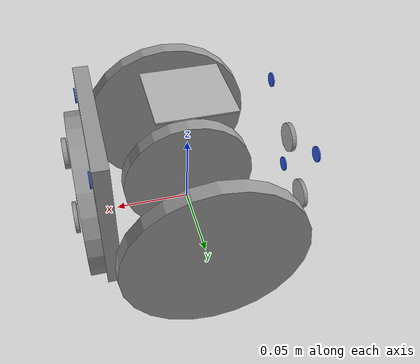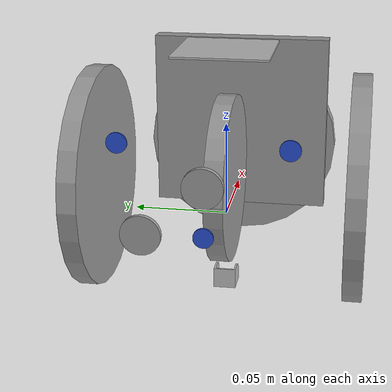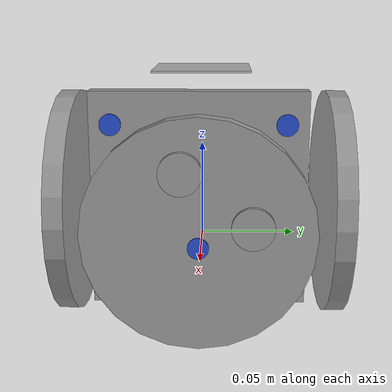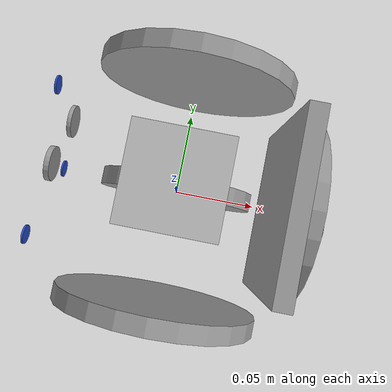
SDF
<sdf version="1.6">
 <model name="ditto5">
  <link name="body">
   <inertial>
    <mass>5</mass>
    <inertia>
     <ixx>0.166667</ixx>
     <ixy>0</ixy>
     <ixz>0</ixz>
     <iyy>0.166667</iyy>
     <iyz>0</iyz>
     <izz>0.166667</izz>
    </inertia>
   </inertial>
   <pose>0 -0 -0.036667 0 -0 -1.5707</pose>
   <visual name="visual">
    <geometry><mesh><uri>model://meshes/bodyCorrected.obj</uri><scale>0.001 0.001 0.001</scale></mesh></geometry>
    <material><shader type="pixel"/><emissive>0 0 0 1</emissive></material>
   </visual>
   <collision name="collision">
    <geometry><mesh><uri>model://meshes/bodyCorrected.obj</uri><scale>0.001 0.001 0.001</scale></mesh></geometry>
    <surface>
     <friction>
      <ode><mu>1</mu><mu2>1</mu2><fdir1>0 0 0</fdir1><slip1>0</slip1><slip2>0</slip2></ode>
      <torsional>
       <coefficient>1</coefficient>
       <patch_radius>0</patch_radius>
       <surface_radius>0</surface_radius>
       <use_patch_radius>1</use_patch_radius>
       <ode><slip>0</slip></ode>
      </torsional>
     </friction>
     <bounce><restitution_coefficient>0</restitution_coefficient><threshold>1e+06</threshold></bounce>
     <contact>
      <collide_without_contact>0</collide_without_contact>
      <collide_without_contact_bitmask>1</collide_without_contact_bitmask>
      <collide_bitmask>1</collide_bitmask>
      <ode>
       <soft_cfm>0</soft_cfm>
       <soft_erp>0.2</soft_erp>
       <kp>1e+13</kp>
       <kd>1</kd>
       <max_vel>0.01</max_vel>
       <min_depth>0</min_depth>
      </ode>
      <bullet>
       <split_impulse>1</split_impulse>
       <split_impulse_penetration_threshold>-0.01</split_impulse_penetration_threshold>
       <soft_cfm>0</soft_cfm>
       <soft_erp>0.2</soft_erp>
       <kp>1e+13</kp>
       <kd>1</kd>
      </bullet>
     </contact>
    </surface>
   </collision>
  </link>
  <link name="body_ir_sensor">
   <inertial>
    <mass>1e-07</mass>
    <inertia><ixx>0</ixx><ixy>0</ixy><ixz>0</ixz><iyy>0</iyy><iyz>0</iyz><izz>0</izz></inertia>
   </inertial>
   <pose>-0.071 0 0.015 1.57068 -2e-06 -1.5707</pose>
   <sensor name="TeraRanger" type="ray">
    <pose>0 0 0 0 -1.5707 0</pose>
    <visualize>0</visualize>
    <update_rate>5</update_rate>
    <ray>
     <scan>
      <horizontal>
       <samples>1</samples>
       <resolution>1</resolution>
       <min_angle>-0.01</min_angle>
       <max_angle>0.01</max_angle>
      </horizontal>
      <vertical>
       <samples>1</samples>
       <resolution>1</resolution>
       <min_angle>-0.01</min_angle>
       <max_angle>0.01</max_angle>
      </vertical>
     </scan>
     <range><min>0.01</min><max>2</max><resolution>0.01</resolution></range>
    </ray>
    <plugin name="gazebo_ros_range" filename="libgazebo_ros_range.so">
     <gaussianNoise>0.005</gaussianNoise>
     <alwaysOn>1</alwaysOn>
     <updateRate>5</updateRate>
     <topicName>ditto5/body_ir</topicName>
     <frameName>body_ir_sensor</frameName>
     <fov>0.5</fov>
     <radiation>ultrasound</radiation>
     <robotNamespace>/</robotNamespace>
    </plugin>
   </sensor>
   <visual name="visual">
    <geometry><cylinder><radius>0.005</radius><length>0.001</length></cylinder></geometry>
    <material>
     <lighting>1</lighting>
     <script><uri>file://media/materials/scripts/gazebo.material</uri><name>Gazebo/Blue</name></script>
     <shader type="pixel"><normal_map>__default__</normal_map></shader>
     <ambient>0.3 0.3 0.3 1</ambient>
     <diffuse>0.7 0.7 0.7 1</diffuse>
     <specular>0.01 0.01 0.01 1</specular>
     <emissive>0 0 0 1</emissive>
    </material>
   </visual>
   <collision name="box_collision">
    <geometry><cylinder><radius>0.005</radius><length>0.001</length></cylinder></geometry>
    <surface>
     <friction>
      <ode><mu>1</mu><mu2>1</mu2><fdir1>0 0 0</fdir1><slip1>0</slip1><slip2>0</slip2></ode>
      <torsional>
       <coefficient>1</coefficient>
       <patch_radius>0</patch_radius>
       <surface_radius>0</surface_radius>
       <use_patch_radius>1</use_patch_radius>
       <ode><slip>0</slip></ode>
      </torsional>
     </friction>
     <bounce><restitution_coefficient>0</restitution_coefficient><threshold>1e+06</threshold></bounce>
     <contact>
      <collide_without_contact>0</collide_without_contact>
      <collide_without_contact_bitmask>1</collide_without_contact_bitmask>
      <collide_bitmask>1</collide_bitmask>
      <ode>
       <soft_cfm>0</soft_cfm>
       <soft_erp>0.2</soft_erp>
       <kp>1e+13</kp>
       <kd>1</kd>
       <max_vel>0.01</max_vel>
       <min_depth>0</min_depth>
      </ode>
      <bullet>
       <split_impulse>1</split_impulse>
       <split_impulse_penetration_threshold>-0.01</split_impulse_penetration_threshold>
       <soft_cfm>0</soft_cfm>
       <soft_erp>0.2</soft_erp>
       <kp>1e+13</kp>
       <kd>1</kd>
      </bullet>
     </contact>
    </surface>
   </collision>
  </link>
  <link name="body_magnet_north">
   <inertial>
    <mass>1e-07</mass>
    <inertia><ixx>0</ixx><ixy>0</ixy><ixz>0</ixz><iyy>0</iyy><iyz>0</iyz><izz>0</izz></inertia>
   </inertial>
   <pose>-0.0715 0.03 0.015 1.5707 -3e-05 -1.5707</pose>
   <sensor name="my_plugin_2" type="contact">
    <plugin name="ContactPlugin_2" filename="libcontact.so">
     <robotNamespace>/</robotNamespace>
     <magnetic_face>body_magnet_south</magnetic_face>
    </plugin>
    <contact><collision>box_collision</collision><topic>__default_topic__</topic></contact>
    <update_rate>5</update_rate>
   </sensor>
   <visual name="visual">
    <geometry><cylinder><radius>0.01</radius><length>0.0025</length></cylinder></geometry>
    <material>
     <lighting>1</lighting>
     <script><uri>file://media/materials/scripts/gazebo.material</uri><name>Gazebo/Grey</name></script>
     <shader type="pixel"><normal_map>__default__</normal_map></shader>
     <ambient>0.3 0.3 0.3 1</ambient>
     <diffuse>0.7 0.7 0.7 1</diffuse>
     <specular>0.01 0.01 0.01 1</specular>
     <emissive>0 0 0 1</emissive>
    </material>
   </visual>
   <collision name="box_collision">
    <geometry><cylinder><radius>0.01</radius><length>0.0025</length></cylinder></geometry>
    <surface>
     <friction>
      <ode><mu>1</mu><mu2>1</mu2><fdir1>0 0 0</fdir1><slip1>0</slip1><slip2>0</slip2></ode>
      <torsional>
       <coefficient>1</coefficient>
       <patch_radius>0</patch_radius>
       <surface_radius>0</surface_radius>
       <use_patch_radius>1</use_patch_radius>
       <ode><slip>0</slip></ode>
      </torsional>
     </friction>
     <bounce><restitution_coefficient>0</restitution_coefficient><threshold>1e+06</threshold></bounce>
     <contact>
      <collide_without_contact>0</collide_without_contact>
      <collide_without_contact_bitmask>1</collide_without_contact_bitmask>
      <collide_bitmask>1</collide_bitmask>
      <ode>
       <soft_cfm>0</soft_cfm>
       <soft_erp>0.2</soft_erp>
       <kp>1e+13</kp>
       <kd>1</kd>
       <max_vel>0.01</max_vel>
       <min_depth>0</min_depth>
      </ode>
      <bullet>
       <split_impulse>1</split_impulse>
       <split_impulse_penetration_threshold>-0.01</split_impulse_penetration_threshold>
       <soft_cfm>0</soft_cfm>
       <soft_erp>0.2</soft_erp>
       <kp>1e+13</kp>
       <kd>1</kd>
      </bullet>
     </contact>
    </surface>
   </collision>
  </link>
  <link name="body_magnet_south">
   <inertial>
    <mass>1e-07</mass>
    <inertia><ixx>0</ixx><ixy>0</ixy><ixz>0</ixz><iyy>0</iyy><iyz>0</iyz><izz>0</izz></inertia>
   </inertial>
   <pose>-0.0715 0  0.04 1.5707 -4.3e-05 -1.5707</pose>
   <sensor name="my_plugin_2" type="contact">
    <plugin name="ContactPlugin_2" filename="libcontact.so">
     <robotNamespace>/</robotNamespace>
     <magnetic_face>body_magnet_north</magnetic_face>
    </plugin>
    <contact><collision>box_collision</collision><topic>__default_topic__</topic></contact>
    <update_rate>5</update_rate>
   </sensor>
   <visual name="visual">
    <geometry><cylinder><radius>0.01</radius><length>0.003</length></cylinder></geometry>
    <material>
     <lighting>1</lighting>
     <script><uri>file://media/materials/scripts/gazebo.material</uri><name>Gazebo/Grey</name></script>
     <shader type="pixel"><normal_map>__default__</normal_map></shader>
     <ambient>0.3 0.3 0.3 1</ambient>
     <diffuse>0.7 0.7 0.7 1</diffuse>
     <specular>0.01 0.01 0.01 1</specular>
     <emissive>0 0 0 1</emissive>
    </material>
   </visual>
   <collision name="box_collision">
    <geometry><cylinder><radius>0.01</radius><length>0.003</length></cylinder></geometry>
    <surface>
     <friction>
      <ode><mu>1</mu><mu2>1</mu2><fdir1>0 0 0</fdir1><slip1>0</slip1><slip2>0</slip2></ode>
      <torsional>
       <coefficient>1</coefficient>
       <patch_radius>0</patch_radius>
       <surface_radius>0</surface_radius>
       <use_patch_radius>1</use_patch_radius>
       <ode><slip>0</slip></ode>
      </torsional>
     </friction>
     <bounce><restitution_coefficient>0</restitution_coefficient><threshold>1e+06</threshold></bounce>
     <contact>
      <collide_without_contact>0</collide_without_contact>
      <collide_without_contact_bitmask>1</collide_without_contact_bitmask>
      <collide_bitmask>1</collide_bitmask>
      <ode>
       <soft_cfm>0</soft_cfm>
       <soft_erp>0.2</soft_erp>
       <kp>1e+13</kp>
       <kd>1</kd>
       <max_vel>0.01</max_vel>
       <min_depth>0</min_depth>
      </ode>
      <bullet>
       <split_impulse>1</split_impulse>
       <split_impulse_penetration_threshold>-0.01</split_impulse_penetration_threshold>
       <soft_cfm>0</soft_cfm>
       <soft_erp>0.2</soft_erp>
       <kp>1e+13</kp>
       <kd>1</kd>
      </bullet>
     </contact>
    </surface>
   </collision>
  </link>
  <link name="body_tof1_sensor">
   <inertial>
    <mass>1e-07</mass>
    <inertia><ixx>0</ixx><ixy>0</ixy><ixz>0</ixz><iyy>0</iyy><iyz>0</iyz><izz>0</izz></inertia>
   </inertial>
   <pose>-0.071 0.04 0.06 1.5707 -5e-05 -1.5707</pose>
   <sensor name="TeraRanger" type="ray">
    <pose>0 0 0 0 -1.5707 0</pose>
    <visualize>0</visualize>
    <update_rate>5</update_rate>
    <ray>
     <scan>
      <horizontal>
       <samples>3</samples>
       <resolution>1</resolution>
       <min_angle>-0.03</min_angle>
       <max_angle>0.03</max_angle>
      </horizontal>
      <vertical>
       <samples>3</samples>
       <resolution>1</resolution>
       <min_angle>-0.25</min_angle>
       <max_angle>0.25</max_angle>
      </vertical>
     </scan>
     <range><min>0.01</min><max>2</max><resolution>0.01</resolution></range>
    </ray>
    <plugin name="gazebo_ros_range" filename="libgazebo_ros_range.so">
     <gaussianNoise>0.005</gaussianNoise>
     <alwaysOn>1</alwaysOn>
     <updateRate>5</updateRate>
     <topicName>ditto5/body_tof1</topicName>
     <frameName>body_tof1_sensor</frameName>
     <fov>0.5</fov>
     <radiation>ultrasound</radiation>
     <robotNamespace>/</robotNamespace>
    </plugin>
   </sensor>
   <visual name="visual">
    <geometry><cylinder><radius>0.005</radius><length>0.001</length></cylinder></geometry>
    <material>
     <lighting>1</lighting>
     <script><uri>file://media/materials/scripts/gazebo.material</uri><name>Gazebo/Blue</name></script>
     <shader type="pixel"><normal_map>__default__</normal_map></shader>
     <ambient>0.3 0.3 0.3 1</ambient>
     <diffuse>0.7 0.7 0.7 1</diffuse>
     <specular>0.01 0.01 0.01 1</specular>
     <emissive>0 0 0 1</emissive>
    </material>
   </visual>
   <collision name="box_collision">
    <geometry><cylinder><radius>0.005</radius><length>0.001</length></cylinder></geometry>
    <surface>
     <friction>
      <ode><mu>1</mu><mu2>1</mu2><fdir1>0 0 0</fdir1><slip1>0</slip1><slip2>0</slip2></ode>
      <torsional>
       <coefficient>1</coefficient>
       <patch_radius>0</patch_radius>
       <surface_radius>0</surface_radius>
       <use_patch_radius>1</use_patch_radius>
       <ode><slip>0</slip></ode>
      </torsional>
     </friction>
     <bounce><restitution_coefficient>0</restitution_coefficient><threshold>1e+06</threshold></bounce>
     <contact>
      <collide_without_contact>0</collide_without_contact>
      <collide_without_contact_bitmask>1</collide_without_contact_bitmask>
      <collide_bitmask>1</collide_bitmask>
      <ode>
       <soft_cfm>0</soft_cfm>
       <soft_erp>0.2</soft_erp>
       <kp>1e+13</kp>
       <kd>1</kd>
       <max_vel>0.01</max_vel>
       <min_depth>0</min_depth>
      </ode>
      <bullet>
       <split_impulse>1</split_impulse>
       <split_impulse_penetration_threshold>-0.01</split_impulse_penetration_threshold>
       <soft_cfm>0</soft_cfm>
       <soft_erp>0.2</soft_erp>
       <kp>1e+13</kp>
       <kd>1</kd>
      </bullet>
     </contact>
    </surface>
   </collision>
  </link>
  <link name="front_face_tof1_sensor">
   <inertial>
    <mass>1e-07</mass>
    <inertia><ixx>0</ixx><ixy>0</ixy><ixz>0</ixz><iyy>0</iyy><iyz>0</iyz><izz>0</izz></inertia>
   </inertial>
   <pose>0.066 0.04 0.07 1.5707 -0 -1.5707</pose>
   <sensor name="TeraRanger" type="ray">
    <pose>0 0 0 0 1.5707 0</pose>
    <visualize>1</visualize>
    <update_rate>5</update_rate>
    <ray>
     <scan>
      <horizontal>
       <samples>3</samples>
       <resolution>1</resolution>
       <min_angle>-0.03</min_angle>
       <max_angle>0.03</max_angle>
      </horizontal>
      <vertical>
       <samples>3</samples>
       <resolution>1</resolution>
       <min_angle>-0.25</min_angle>
       <max_angle>0.25</max_angle>
      </vertical>
     </scan>
     <range><min>0.01</min><max>2</max><resolution>0.01</resolution></range>
    </ray>
    <plugin name="gazebo_ros_range" filename="libgazebo_ros_range.so">
     <gaussianNoise>0.005</gaussianNoise>
     <alwaysOn>1</alwaysOn>
     <updateRate>5</updateRate>
     <topicName>ditto5/front_face_tof1</topicName>
     <frameName>front_face_tof1_sensor</frameName>
     <fov>0.5</fov>
     <radiation>ultrasound</radiation>
     <robotNamespace>/</robotNamespace>
    </plugin>
   </sensor>
   <visual name="visual">
    <geometry><cylinder><radius>0.005</radius><length>0.001</length></cylinder></geometry>
    <material>
     <lighting>1</lighting>
     <script><uri>file://media/materials/scripts/gazebo.material</uri><name>Gazebo/Blue</name></script>
     <shader type="pixel"><normal_map>__default__</normal_map></shader>
     <ambient>0.3 0.3 0.3 1</ambient>
     <diffuse>0.7 0.7 0.7 1</diffuse>
     <specular>0.01 0.01 0.01 1</specular>
     <emissive>1 1 1 1</emissive>
    </material>
   </visual>
   <collision name="box_collision">
    <geometry><cylinder><radius>0.005</radius><length>0.001</length></cylinder></geometry>
    <surface>
     <friction>
      <ode><mu>1</mu><mu2>1</mu2><fdir1>0 0 0</fdir1><slip1>0</slip1><slip2>0</slip2></ode>
      <torsional>
       <coefficient>1</coefficient>
       <patch_radius>0</patch_radius>
       <surface_radius>0</surface_radius>
       <use_patch_radius>1</use_patch_radius>
       <ode><slip>0</slip></ode>
      </torsional>
     </friction>
     <bounce><restitution_coefficient>0</restitution_coefficient><threshold>1e+06</threshold></bounce>
     <contact>
      <collide_without_contact>0</collide_without_contact>
      <collide_without_contact_bitmask>1</collide_without_contact_bitmask>
      <collide_bitmask>1</collide_bitmask>
      <ode>
       <soft_cfm>0</soft_cfm>
       <soft_erp>0.2</soft_erp>
       <kp>1e+13</kp>
       <kd>1</kd>
       <max_vel>0.01</max_vel>
       <min_depth>0</min_depth>
      </ode>
      <bullet>
       <split_impulse>1</split_impulse>
       <split_impulse_penetration_threshold>-0.01</split_impulse_penetration_threshold>
       <soft_cfm>0</soft_cfm>
       <soft_erp>0.2</soft_erp>
       <kp>1e+13</kp>
       <kd>1</kd>
      </bullet>
     </contact>
    </surface>
   </collision>
  </link>
  <link name="body_tof2_sensor">
   <inertial>
    <mass>1e-07</mass>
    <inertia><ixx>0</ixx><ixy>0</ixy><ixz>0</ixz><iyy>0</iyy><iyz>0</iyz><izz>0</izz></inertia>
   </inertial>
   <pose>-0.071 -0.04 0.06 1.5707 -0 -1.5707</pose>
   <sensor name="TeraRanger" type="ray">
    <pose>0 0 0 0 -1.5707 0</pose>
    <visualize>0</visualize>
    <update_rate>5</update_rate>
    <ray>
     <scan>
      <horizontal>
       <samples>3</samples>
       <resolution>1</resolution>
       <min_angle>-0.03</min_angle>
       <max_angle>0.03</max_angle>
      </horizontal>
      <vertical>
       <samples>3</samples>
       <resolution>1</resolution>
       <min_angle>-0.25</min_angle>
       <max_angle>0.25</max_angle>
      </vertical>
     </scan>
     <range><min>0.01</min><max>2</max><resolution>0.01</resolution></range>
    </ray>
    <plugin name="gazebo_ros_range" filename="libgazebo_ros_range.so">
     <gaussianNoise>0.005</gaussianNoise>
     <alwaysOn>1</alwaysOn>
     <updateRate>5</updateRate>
     <topicName>ditto5/body_tof2</topicName>
     <frameName>body_tof2_sensor</frameName>
     <fov>0.5</fov>
     <radiation>ultrasound</radiation>
     <robotNamespace>/</robotNamespace>
    </plugin>
   </sensor>
   <visual name="visual">
    <geometry><cylinder><radius>0.005</radius><length>0.001</length></cylinder></geometry>
    <material>
     <lighting>1</lighting>
     <script><uri>file://media/materials/scripts/gazebo.material</uri><name>Gazebo/Blue</name></script>
     <shader type="pixel"><normal_map>__default__</normal_map></shader>
     <ambient>0.3 0.3 0.3 1</ambient>
     <diffuse>0.7 0.7 0.7 1</diffuse>
     <specular>0.01 0.01 0.01 1</specular>
     <emissive>0 0 0 1</emissive>
    </material>
   </visual>
   <collision name="box_collision">
    <geometry><cylinder><radius>0.005</radius><length>0.001</length></cylinder></geometry>
    <surface>
     <friction>
      <ode><mu>1</mu><mu2>1</mu2><fdir1>0 0 0</fdir1><slip1>0</slip1><slip2>0</slip2></ode>
      <torsional>
       <coefficient>1</coefficient>
       <patch_radius>0</patch_radius>
       <surface_radius>0</surface_radius>
       <use_patch_radius>1</use_patch_radius>
       <ode><slip>0</slip></ode>
      </torsional>
     </friction>
     <bounce><restitution_coefficient>0</restitution_coefficient><threshold>1e+06</threshold></bounce>
     <contact>
      <collide_without_contact>0</collide_without_contact>
      <collide_without_contact_bitmask>1</collide_without_contact_bitmask>
      <collide_bitmask>1</collide_bitmask>
      <ode>
       <soft_cfm>0</soft_cfm>
       <soft_erp>0.2</soft_erp>
       <kp>1e+13</kp>
       <kd>1</kd>
       <max_vel>0.01</max_vel>
       <min_depth>0</min_depth>
      </ode>
      <bullet>
       <split_impulse>1</split_impulse>
       <split_impulse_penetration_threshold>-0.01</split_impulse_penetration_threshold>
       <soft_cfm>0</soft_cfm>
       <soft_erp>0.2</soft_erp>
       <kp>1e+13</kp>
       <kd>1</kd>
      </bullet>
     </contact>
    </surface>
   </collision>
  </link>
  <link name="front_face_tof2_sensor">
   <inertial>
    <mass>1e-07</mass>
    <inertia><ixx>0</ixx><ixy>0</ixy><ixz>0</ixz><iyy>0</iyy><iyz>0</iyz><izz>0</izz></inertia>
   </inertial>
   <pose>0.066 -0.04 0.07 1.5707 -0 -1.5707</pose>
   <sensor name="TeraRanger" type="ray">
    <pose>0 0 0 0 1.5707 0</pose>
    <visualize>0</visualize>
    <update_rate>5</update_rate>
    <ray>
     <scan>
      <horizontal>
       <samples>3</samples>
       <resolution>1</resolution>
       <min_angle>-0.03</min_angle>
       <max_angle>0.03</max_angle>
      </horizontal>
      <vertical>
       <samples>3</samples>
       <resolution>1</resolution>
       <min_angle>-0.25</min_angle>
       <max_angle>0.25</max_angle>
      </vertical>
     </scan>
     <range><min>0.01</min><max>2</max><resolution>0.01</resolution></range>
    </ray>
    <plugin name="gazebo_ros_range" filename="libgazebo_ros_range.so">
     <gaussianNoise>0.005</gaussianNoise>
     <alwaysOn>1</alwaysOn>
     <updateRate>5</updateRate>
     <topicName>ditto5/front_face_tof2</topicName>
     <frameName>front_face_tof2_sensor</frameName>
     <fov>0.5</fov>
     <radiation>ultrasound</radiation>
     <robotNamespace>/</robotNamespace>
    </plugin>
   </sensor>
   <visual name="visual">
    <geometry><cylinder><radius>0.005</radius><length>0.001</length></cylinder></geometry>
    <material>
     <lighting>1</lighting>
     <script><uri>file://media/materials/scripts/gazebo.material</uri><name>Gazebo/Blue</name></script>
     <shader type="pixel"><normal_map>__default__</normal_map></shader>
     <ambient>0.3 0.3 0.3 1</ambient>
     <diffuse>0.7 0.7 0.7 1</diffuse>
     <specular>0.01 0.01 0.01 1</specular>
     <emissive>1 1 1 1</emissive>
    </material>
   </visual>
   <collision name="box_collision">
    <geometry><cylinder><radius>0.005</radius><length>0.001</length></cylinder></geometry>
    <surface>
     <friction>
      <ode><mu>1</mu><mu2>1</mu2><fdir1>0 0 0</fdir1><slip1>0</slip1><slip2>0</slip2></ode>
      <torsional>
       <coefficient>1</coefficient>
       <patch_radius>0</patch_radius>
       <surface_radius>0</surface_radius>
       <use_patch_radius>1</use_patch_radius>
       <ode><slip>0</slip></ode>
      </torsional>
     </friction>
     <bounce><restitution_coefficient>0</restitution_coefficient><threshold>1e+06</threshold></bounce>
     <contact>
      <collide_without_contact>0</collide_without_contact>
      <collide_without_contact_bitmask>1</collide_without_contact_bitmask>
      <collide_bitmask>1</collide_bitmask>
      <ode>
       <soft_cfm>0</soft_cfm>
       <soft_erp>0.2</soft_erp>
       <kp>1e+13</kp>
       <kd>1</kd>
       <max_vel>0.01</max_vel>
       <min_depth>0</min_depth>
      </ode>
      <bullet>
       <split_impulse>1</split_impulse>
       <split_impulse_penetration_threshold>-0.01</split_impulse_penetration_threshold>
       <soft_cfm>0</soft_cfm>
       <soft_erp>0.2</soft_erp>
       <kp>1e+13</kp>
       <kd>1</kd>
      </bullet>
     </contact>
    </surface>
   </collision>
  </link>
  <link name="face_pan">
   <inertial>
    <mass>0.1</mass>
    <inertia><ixx>0.145833</ixx><ixy>0</ixy><ixz>0</ixz><iyy>0.145833</iyy><iyz>0</iyz><izz>0.125</izz></inertia>
   </inertial>
   <pose>0.06 0 0.035 -3.13999 -0 -1.5707</pose>
   <visual name="visual">
    <geometry><box><size>0.1 0.01 0.1</size></box></geometry>
    <material>
     <lighting>1</lighting>
     <script><uri>file://media/materials/scripts/gazebo.material</uri><name>Gazebo/Grey</name></script>
     <shader type="pixel"><normal_map>__default__</normal_map></shader>
     <ambient>0.3 0.3 0.3 1</ambient>
     <diffuse>0.7 0.7 0.7 1</diffuse>
     <specular>0.01 0.01 0.01 1</specular>
     <emissive>0 0 0 1</emissive>
    </material>
   </visual>
   <collision name="collision">
    <geometry><box><size>0.1 0.01 0.1</size></box></geometry>
    <surface>
     <friction>
      <ode><mu>1</mu><mu2>1</mu2><fdir1>0 0 0</fdir1><slip1>0</slip1><slip2>0</slip2></ode>
      <torsional>
       <coefficient>1</coefficient>
       <patch_radius>0</patch_radius>
       <surface_radius>0</surface_radius>
       <use_patch_radius>1</use_patch_radius>
       <ode><slip>0</slip></ode>
      </torsional>
     </friction>
     <bounce><restitution_coefficient>0</restitution_coefficient><threshold>1e+06</threshold></bounce>
     <contact>
      <collide_without_contact>0</collide_without_contact>
      <collide_without_contact_bitmask>1</collide_without_contact_bitmask>
      <collide_bitmask>1</collide_bitmask>
      <ode>
       <soft_cfm>0</soft_cfm>
       <soft_erp>0.2</soft_erp>
       <kp>1e+13</kp>
       <kd>1</kd>
       <max_vel>0.01</max_vel>
       <min_depth>0</min_depth>
      </ode>
      <bullet>
       <split_impulse>1</split_impulse>
       <split_impulse_penetration_threshold>-0.01</split_impulse_penetration_threshold>
       <soft_cfm>0</soft_cfm>
       <soft_erp>0.2</soft_erp>
       <kp>1e+13</kp>
       <kd>1</kd>
      </bullet>
     </contact>
    </surface>
   </collision>
  </link>
  <link name="face_tilt">
   <inertial>
    <mass>0.0001</mass>
    <inertia><ixx>0.145833</ixx><ixy>0</ixy><ixz>0</ixz><iyy>0.145833</iyy><iyz>0</iyz><izz>0.125</izz></inertia>
   </inertial>
   <pose>0 0 0.02 -1.5707 1.56989 3.14159</pose>
   <visual name="visual">
    <geometry><cylinder><radius>0.045</radius><length>0.01</length></cylinder></geometry>
    <material>
     <lighting>1</lighting>
     <script><uri>file://media/materials/scripts/gazebo.material</uri><name>Gazebo/Grey</name></script>
     <shader type="pixel"><normal_map>__default__</normal_map></shader>
     <ambient>0.3 0.3 0.3 1</ambient>
     <diffuse>0.7 0.7 0.7 1</diffuse>
     <specular>0.01 0.01 0.01 1</specular>
     <emissive>0 0 0 1</emissive>
    </material>
   </visual>
   <collision name="collision">
    <geometry><cylinder><radius>0.045</radius><length>0.01</length></cylinder></geometry>
    <surface>
     <friction>
      <ode><mu>1</mu><mu2>1</mu2><fdir1>0 0 0</fdir1><slip1>0</slip1><slip2>0</slip2></ode>
      <torsional>
       <coefficient>1</coefficient>
       <patch_radius>0</patch_radius>
       <surface_radius>0</surface_radius>
       <use_patch_radius>1</use_patch_radius>
       <ode><slip>0</slip></ode>
      </torsional>
     </friction>
     <bounce><restitution_coefficient>0</restitution_coefficient><threshold>1e+06</threshold></bounce>
     <contact>
      <collide_without_contact>0</collide_without_contact>
      <collide_without_contact_bitmask>1</collide_without_contact_bitmask>
      <collide_bitmask>1</collide_bitmask>
      <ode>
       <soft_cfm>0</soft_cfm>
       <soft_erp>0.2</soft_erp>
       <kp>1e+13</kp>
       <kd>1</kd>
       <max_vel>0.01</max_vel>
       <min_depth>0</min_depth>
      </ode>
      <bullet>
       <split_impulse>1</split_impulse>
       <split_impulse_penetration_threshold>-0.01</split_impulse_penetration_threshold>
       <soft_cfm>0</soft_cfm>
       <soft_erp>0.2</soft_erp>
       <kp>1e+13</kp>
       <kd>1</kd>
      </bullet>
     </contact>
    </surface>
   </collision>
  </link>
  <link name="front_face">
   <inertial>
    <mass>0.5</mass>
    <inertia>
     <ixx>0.166667</ixx>
     <ixy>0</ixy>
     <ixz>0</ixz>
     <iyy>0.166667</iyy>
     <iyz>0</iyz>
     <izz>0.166667</izz>
    </inertia>
   </inertial>
   <pose>0.07 0 0.02 -1.9e-05 -2e-06 -1.5707</pose>
   <visual name="visual">
    <pose>0 0 0 1.5707 -0 0</pose>
    <geometry><cylinder><radius>0.055</radius><length>0.01</length></cylinder></geometry>
    <material>
     <lighting>1</lighting>
     <script><uri>file://media/materials/scripts/gazebo.material</uri><name>Gazebo/Grey</name></script>
     <shader type="pixel"><normal_map>__default__</normal_map></shader>
     <ambient>0.3 0.3 0.3 1</ambient>
     <diffuse>0.7 0.7 0.7 1</diffuse>
     <specular>0.01 0.01 0.01 1</specular>
     <emissive>0 0 0 1</emissive>
    </material>
   </visual>
   <collision name="collision">
    <pose>0 0 0 1.5707 -0 0</pose>
    <geometry><cylinder><radius>0.05</radius><length>0.01</length></cylinder></geometry>
    <surface>
     <friction>
      <ode><mu>1</mu><mu2>1</mu2><fdir1>0 0 0</fdir1><slip1>0</slip1><slip2>0</slip2></ode>
      <torsional>
       <coefficient>1</coefficient>
       <patch_radius>0</patch_radius>
       <surface_radius>0</surface_radius>
       <use_patch_radius>1</use_patch_radius>
       <ode><slip>0</slip></ode>
      </torsional>
     </friction>
     <bounce><restitution_coefficient>0</restitution_coefficient><threshold>1e+06</threshold></bounce>
     <contact>
      <collide_without_contact>0</collide_without_contact>
      <collide_without_contact_bitmask>1</collide_without_contact_bitmask>
      <collide_bitmask>1</collide_bitmask>
      <ode>
       <soft_cfm>0</soft_cfm>
       <soft_erp>0.2</soft_erp>
       <kp>1e+13</kp>
       <kd>1</kd>
       <max_vel>0.01</max_vel>
       <min_depth>0</min_depth>
      </ode>
      <bullet>
       <split_impulse>1</split_impulse>
       <split_impulse_penetration_threshold>-0.01</split_impulse_penetration_threshold>
       <soft_cfm>0</soft_cfm>
       <soft_erp>0.2</soft_erp>
       <kp>1e+13</kp>
       <kd>1</kd>
      </bullet>
     </contact>
    </surface>
   </collision>
  </link>
  <link name="front_face_magnet_north">
   <inertial>
    <mass>1e-07</mass>
    <inertia><ixx>0</ixx><ixy>0</ixy><ixz>0</ixz><iyy>0</iyy><iyz>0</iyz><izz>0</izz></inertia>
   </inertial>
   <pose>0.078 0.03 0.015 1.5707 -1.3e-05 -1.5707</pose>
   <sensor name="my_plugin_1" type="contact">
    <plugin name="ContactPlugin_1" filename="libcontact.so">
     <robotNamespace>/</robotNamespace>
     <magnetic_face>front_face_magnet_north</magnetic_face>
    </plugin>
    <contact><collision>box_collision</collision><topic>__default_topic__</topic></contact>
    <update_rate>5</update_rate>
   </sensor>
   <visual name="visual">
    <pose>0.005 0.01 0 0 -0 0</pose>
    <geometry><cylinder><radius>0.01</radius><length>0.0025</length></cylinder></geometry>
    <material>
     <lighting>1</lighting>
     <script><uri>file://media/materials/scripts/gazebo.material</uri><name>Gazebo/Grey</name></script>
     <shader type="pixel"><normal_map>__default__</normal_map></shader>
     <ambient>0.3 0.3 0.3 1</ambient>
     <diffuse>0.7 0.7 0.7 1</diffuse>
     <specular>0.01 0.01 0.01 1</specular>
     <emissive>0 0 0 1</emissive>
    </material>
   </visual>
   <collision name="box_collision">
    <geometry><cylinder><radius>0.01</radius><length>0.0025</length></cylinder></geometry>
    <surface>
     <friction>
      <ode><mu>1</mu><mu2>1</mu2><fdir1>0 0 0</fdir1><slip1>0</slip1><slip2>0</slip2></ode>
      <torsional>
       <coefficient>1</coefficient>
       <patch_radius>0</patch_radius>
       <surface_radius>0</surface_radius>
       <use_patch_radius>1</use_patch_radius>
       <ode><slip>0</slip></ode>
      </torsional>
     </friction>
     <bounce><restitution_coefficient>0</restitution_coefficient><threshold>1e+06</threshold></bounce>
     <contact>
      <collide_without_contact>0</collide_without_contact>
      <collide_without_contact_bitmask>1</collide_without_contact_bitmask>
      <collide_bitmask>1</collide_bitmask>
      <ode>
       <soft_cfm>0</soft_cfm>
       <soft_erp>0.2</soft_erp>
       <kp>1e+13</kp>
       <kd>1</kd>
       <max_vel>0.01</max_vel>
       <min_depth>0</min_depth>
      </ode>
      <bullet>
       <split_impulse>1</split_impulse>
       <split_impulse_penetration_threshold>-0.01</split_impulse_penetration_threshold>
       <soft_cfm>0</soft_cfm>
       <soft_erp>0.2</soft_erp>
       <kp>1e+13</kp>
       <kd>1</kd>
      </bullet>
     </contact>
    </surface>
   </collision>
  </link>
  <link name="front_face_magnet_south">
   <inertial>
    <mass>1e-07</mass>
    <inertia><ixx>0</ixx><ixy>0</ixy><ixz>0</ixz><iyy>0</iyy><iyz>0</iyz><izz>0</izz></inertia>
   </inertial>
   <pose>0.078 -0.003  0.04 1.5707 -2.4e-05 -1.5707</pose>
   <sensor name="my_plugin_1" type="contact">
    <plugin name="ContactPlugin_1" filename="libcontact.so">
     <robotNamespace>/</robotNamespace>
     <magnetic_face>front_face_magnet_south</magnetic_face>
    </plugin>
    <contact><collision>box_collision</collision><topic>__default_topic__</topic></contact>
    <update_rate>5</update_rate>
   </sensor>
   <visual name="visual">
    <pose>0.005 0.01 0 0 -0 0</pose>
    <geometry><cylinder><radius>0.01</radius><length>0.003</length></cylinder></geometry>
    <material>
     <lighting>1</lighting>
     <script><uri>file://media/materials/scripts/gazebo.material</uri><name>Gazebo/Grey</name></script>
     <shader type="pixel"><normal_map>__default__</normal_map></shader>
     <ambient>0.3 0.3 0.3 1</ambient>
     <diffuse>0.7 0.7 0.7 1</diffuse>
     <specular>0.01 0.01 0.01 1</specular>
     <emissive>0 0 0 1</emissive>
    </material>
   </visual>
   <collision name="box_collision">
    <geometry><cylinder><radius>0.01</radius><length>0.003</length></cylinder></geometry>
    <surface>
     <friction>
      <ode><mu>1</mu><mu2>1</mu2><fdir1>0 0 0</fdir1><slip1>0</slip1><slip2>0</slip2></ode>
      <torsional>
       <coefficient>1</coefficient>
       <patch_radius>0</patch_radius>
       <surface_radius>0</surface_radius>
       <use_patch_radius>1</use_patch_radius>
       <ode><slip>0</slip></ode>
      </torsional>
     </friction>
     <bounce><restitution_coefficient>0</restitution_coefficient><threshold>1e+06</threshold></bounce>
     <contact>
      <collide_without_contact>0</collide_without_contact>
      <collide_without_contact_bitmask>1</collide_without_contact_bitmask>
      <collide_bitmask>1</collide_bitmask>
      <ode>
       <soft_cfm>0</soft_cfm>
       <soft_erp>0.2</soft_erp>
       <kp>1e+13</kp>
       <kd>1</kd>
       <max_vel>0.01</max_vel>
       <min_depth>0</min_depth>
      </ode>
      <bullet>
       <split_impulse>1</split_impulse>
       <split_impulse_penetration_threshold>-0.01</split_impulse_penetration_threshold>
       <soft_cfm>0</soft_cfm>
       <soft_erp>0.2</soft_erp>
       <kp>1e+13</kp>
       <kd>1</kd>
      </bullet>
     </contact>
    </surface>
   </collision>
  </link>
  <link name="front_face_ir_sensor">
   <inertial>
    <mass>1e-07</mass>
    <inertia><ixx>0</ixx><ixy>0</ixy><ixz>0</ixz><iyy>0</iyy><iyz>0</iyz><izz>0</izz></inertia>
   </inertial>
   <pose>0.076 0 0.015 1.5707 -0 -1.5707</pose>
   <sensor name="TeraRanger" type="ray">
    <pose>0 0 0 0 1.5707 0</pose>
    <visualize>0</visualize>
    <update_rate>5</update_rate>
    <ray>
     <scan>
      <horizontal>
       <samples>1</samples>
       <resolution>1</resolution>
       <min_angle>-0.03</min_angle>
       <max_angle>0.03</max_angle>
      </horizontal>
      <vertical>
       <samples>1</samples>
       <resolution>1</resolution>
       <min_angle>-0.25</min_angle>
       <max_angle>0.25</max_angle>
      </vertical>
     </scan>
     <range><min>0.01</min><max>2</max><resolution>0.01</resolution></range>
    </ray>
    <plugin name="gazebo_ros_range" filename="libgazebo_ros_range.so">
     <gaussianNoise>0.005</gaussianNoise>
     <alwaysOn>1</alwaysOn>
     <updateRate>5</updateRate>
     <topicName>ditto5/front_face_ir</topicName>
     <frameName>front_face_ir_sensor</frameName>
     <fov>0.5</fov>
     <radiation>ultrasound</radiation>
     <robotNamespace>/</robotNamespace>
    </plugin>
   </sensor>
   <visual name="visual">
    <geometry><cylinder><radius>0.005</radius><length>0.001</length></cylinder></geometry>
    <material>
     <lighting>1</lighting>
     <script><uri>file://media/materials/scripts/gazebo.material</uri><name>Gazebo/Blue</name></script>
     <shader type="pixel"><normal_map>__default__</normal_map></shader>
     <ambient>0.3 0.3 0.3 1</ambient>
     <diffuse>0.7 0.7 0.7 1</diffuse>
     <specular>0.01 0.01 0.01 1</specular>
     <emissive>1 1 1 1</emissive>
    </material>
   </visual>
   <collision name="box_collision">
    <geometry><cylinder><radius>0.005</radius><length>0.001</length></cylinder></geometry>
    <surface>
     <friction>
      <ode><mu>1</mu><mu2>1</mu2><fdir1>0 0 0</fdir1><slip1>0</slip1><slip2>0</slip2></ode>
      <torsional>
       <coefficient>1</coefficient>
       <patch_radius>0</patch_radius>
       <surface_radius>0</surface_radius>
       <use_patch_radius>1</use_patch_radius>
       <ode><slip>0</slip></ode>
      </torsional>
     </friction>
     <bounce><restitution_coefficient>0</restitution_coefficient><threshold>1e+06</threshold></bounce>
     <contact>
      <collide_without_contact>0</collide_without_contact>
      <collide_without_contact_bitmask>1</collide_without_contact_bitmask>
      <collide_bitmask>1</collide_bitmask>
      <ode>
       <soft_cfm>0</soft_cfm>
       <soft_erp>0.2</soft_erp>
       <kp>1e+13</kp>
       <kd>1</kd>
       <max_vel>0.01</max_vel>
       <min_depth>0</min_depth>
      </ode>
      <bullet>
       <split_impulse>1</split_impulse>
       <split_impulse_penetration_threshold>-0.01</split_impulse_penetration_threshold>
       <soft_cfm>0</soft_cfm>
       <soft_erp>0.2</soft_erp>
       <kp>1e+13</kp>
       <kd>1</kd>
      </bullet>
     </contact>
    </surface>
   </collision>
  </link>
  <link name="left_wheel">
   <inertial>
    <mass>0.5</mass>
    <inertia><ixx>0.145833</ixx><ixy>0</ixy><ixz>0</ixz><iyy>0.145833</iyy><iyz>0</iyz><izz>0.125</izz></inertia>
   </inertial>
   <pose>0 0.07 0.018333 1.5707 0 0</pose>
   <visual name="visual">
    <geometry><cylinder><radius>0.06</radius><length>0.01</length></cylinder></geometry>
    <material>
     <lighting>1</lighting>
     <script><uri>file://media/materials/scripts/gazebo.material</uri><name>Gazebo/Grey</name></script>
     <shader type="pixel"><normal_map>__default__</normal_map></shader>
     <ambient>0.3 0.3 0.3 1</ambient>
     <diffuse>0.7 0.7 0.7 1</diffuse>
     <specular>0.01 0.01 0.01 1</specular>
     <emissive>0 0 0 1</emissive>
    </material>
   </visual>
   <collision name="collision">
    <geometry><cylinder><radius>0.06</radius><length>0.01</length></cylinder></geometry>
    <surface>
     <friction>
      <ode><mu>1</mu><mu2>1</mu2><fdir1>0 0 0</fdir1><slip1>0</slip1><slip2>0</slip2></ode>
      <torsional>
       <coefficient>1</coefficient>
       <patch_radius>0</patch_radius>
       <surface_radius>0</surface_radius>
       <use_patch_radius>1</use_patch_radius>
       <ode><slip>0</slip></ode>
      </torsional>
     </friction>
     <bounce><restitution_coefficient>0</restitution_coefficient><threshold>1e+06</threshold></bounce>
     <contact>
      <collide_without_contact>0</collide_without_contact>
      <collide_without_contact_bitmask>1</collide_without_contact_bitmask>
      <collide_bitmask>1</collide_bitmask>
      <ode>
       <soft_cfm>0</soft_cfm>
       <soft_erp>0.2</soft_erp>
       <kp>1e+13</kp>
       <kd>1</kd>
       <max_vel>0.01</max_vel>
       <min_depth>0</min_depth>
      </ode>
      <bullet>
       <split_impulse>1</split_impulse>
       <split_impulse_penetration_threshold>-0.01</split_impulse_penetration_threshold>
       <soft_cfm>0</soft_cfm>
       <soft_erp>0.2</soft_erp>
       <kp>1e+13</kp>
       <kd>1</kd>
      </bullet>
     </contact>
    </surface>
   </collision>
  </link>
  <link name="right_wheel">
   <inertial>
    <mass>0.5</mass>
    <inertia><ixx>0.145833</ixx><ixy>0</ixy><ixz>0</ixz><iyy>0.145833</iyy><iyz>0</iyz><izz>0.125</izz></inertia>
   </inertial>
   <pose>0 -0.07 0.018333 1.5707 0 0</pose>
   <visual name="visual">
    <geometry><cylinder><radius>0.06</radius><length>0.01</length></cylinder></geometry>
    <material>
     <lighting>1</lighting>
     <script><uri>file://media/materials/scripts/gazebo.material</uri><name>Gazebo/Grey</name></script>
     <shader type="pixel"><normal_map>__default__</normal_map></shader>
     <ambient>0.3 0.3 0.3 1</ambient>
     <diffuse>0.7 0.7 0.7 1</diffuse>
     <specular>0.01 0.01 0.01 1</specular>
     <emissive>0 0 0 1</emissive>
    </material>
   </visual>
   <collision name="collision">
    <geometry><cylinder><radius>0.06</radius><length>0.01</length></cylinder></geometry>
    <surface>
     <friction>
      <ode><mu>1</mu><mu2>1</mu2><fdir1>0 0 0</fdir1><slip1>0</slip1><slip2>0</slip2></ode>
      <torsional>
       <coefficient>1</coefficient>
       <patch_radius>0</patch_radius>
       <surface_radius>0</surface_radius>
       <use_patch_radius>1</use_patch_radius>
       <ode><slip>0</slip></ode>
      </torsional>
     </friction>
     <bounce><restitution_coefficient>0</restitution_coefficient><threshold>1e+06</threshold></bounce>
     <contact>
      <collide_without_contact>0</collide_without_contact>
      <collide_without_contact_bitmask>1</collide_without_contact_bitmask>
      <collide_bitmask>1</collide_bitmask>
      <ode>
       <soft_cfm>0</soft_cfm>
       <soft_erp>0.2</soft_erp>
       <kp>1e+13</kp>
       <kd>1</kd>
       <max_vel>0.01</max_vel>
       <min_depth>0</min_depth>
      </ode>
      <bullet>
       <split_impulse>1</split_impulse>
       <split_impulse_penetration_threshold>-0.01</split_impulse_penetration_threshold>
       <soft_cfm>0</soft_cfm>
       <soft_erp>0.2</soft_erp>
       <kp>1e+13</kp>
       <kd>1</kd>
      </bullet>
     </contact>
    </surface>
   </collision>
  </link>
  <link name="april5">
   <pose>0  0  0.09 0 0 0</pose>
   <inertial>
    <mass>0.01</mass>
    <inertia><ixx>0</ixx><ixy>0</ixy><ixz>0</ixz><iyy>0</iyy><iyz>0</iyz><izz>0</izz></inertia>
   </inertial>
   <collision name="body_fixed_joint_lump__collision_collision">
    <geometry><mesh><scale>1 1 1</scale><uri>model://id5/meshes/id5.dae</uri></mesh></geometry>
   </collision>
   <visual name="body_fixed_joint_lump__visual_visual">
    <geometry><mesh><scale>1 1 1</scale><uri>model://id5/meshes/id5.dae</uri></mesh></geometry>
   </visual>
  </link>
  <joint name="body_tag5" type="fixed">
   <parent>body</parent>
   <child>april5</child>
   <axis><xyz>0 0 0</xyz><use_parent_model_frame>0</use_parent_model_frame></axis>
  </joint>
  <joint name="body_JOINT_0" type="revolute">
   <parent>body</parent>
   <child>body_magnet_south</child>
   <axis>
    <xyz>1 0 0</xyz>
    <use_parent_model_frame>0</use_parent_model_frame>
    <limit><lower>0</lower><upper>0</upper><effort>-1</effort><velocity>-1</velocity></limit>
    <dynamics>
     <spring_reference>0</spring_reference>
     <spring_stiffness>0</spring_stiffness>
     <damping>0</damping>
     <friction>0</friction>
    </dynamics>
   </axis>
   <physics>
    <ode><limit><cfm>0</cfm><erp>0.2</erp></limit><suspension><cfm>0</cfm><erp>0.2</erp></suspension></ode>
   </physics>
  </joint>
  <joint name="body_JOINT_1" type="revolute">
   <parent>body</parent>
   <child>body_magnet_north</child>
   <axis>
    <xyz>1 0 0</xyz>
    <use_parent_model_frame>0</use_parent_model_frame>
    <limit><lower>0</lower><upper>0</upper><effort>-1</effort><velocity>-1</velocity></limit>
    <dynamics>
     <spring_reference>0</spring_reference>
     <spring_stiffness>0</spring_stiffness>
     <damping>0</damping>
     <friction>0</friction>
    </dynamics>
   </axis>
   <physics>
    <ode><limit><cfm>0</cfm><erp>0.2</erp></limit><suspension><cfm>0</cfm><erp>0.2</erp></suspension></ode>
   </physics>
  </joint>
  <joint name="body_ir_sensor_joint" type="revolute">
   <parent>body</parent>
   <child>body_ir_sensor</child>
   <axis>
    <xyz>0 0 0</xyz>
    <use_parent_model_frame>0</use_parent_model_frame>
    <limit><lower>0</lower><upper>-0</upper><effort>-1</effort><velocity>-1</velocity></limit>
    <dynamics>
     <spring_reference>0</spring_reference>
     <spring_stiffness>0</spring_stiffness>
     <damping>0</damping>
     <friction>0</friction>
    </dynamics>
   </axis>
   <physics>
    <ode><limit><cfm>0</cfm><erp>0.2</erp></limit><suspension><cfm>0</cfm><erp>0.2</erp></suspension></ode>
   </physics>
  </joint>
  <joint name="body_tof1_joint" type="revolute">
   <parent>body</parent>
   <child>body_tof1_sensor</child>
   <axis>
    <xyz>1 0 0</xyz>
    <use_parent_model_frame>0</use_parent_model_frame>
    <limit><lower>0</lower><upper>0</upper><effort>-1</effort><velocity>-1</velocity></limit>
    <dynamics>
     <spring_reference>0</spring_reference>
     <spring_stiffness>0</spring_stiffness>
     <damping>0</damping>
     <friction>0</friction>
    </dynamics>
   </axis>
   <physics>
    <ode><limit><cfm>0</cfm><erp>0.2</erp></limit><suspension><cfm>0</cfm><erp>0.2</erp></suspension></ode>
   </physics>
  </joint>
  <joint name="body_tof2_joint" type="revolute">
   <parent>body</parent>
   <child>body_tof2_sensor</child>
   <axis>
    <xyz>1 0 0</xyz>
    <use_parent_model_frame>0</use_parent_model_frame>
    <limit><lower>0</lower><upper>0</upper><effort>-1</effort><velocity>-1</velocity></limit>
    <dynamics>
     <spring_reference>0</spring_reference>
     <spring_stiffness>0</spring_stiffness>
     <damping>0</damping>
     <friction>0</friction>
    </dynamics>
   </axis>
   <physics>
    <ode><limit><cfm>0</cfm><erp>0.2</erp></limit><suspension><cfm>0</cfm><erp>0.2</erp></suspension></ode>
   </physics>
  </joint>
  <joint name="front_face_tof1_joint" type="revolute">
   <parent>face_pan</parent>
   <child>front_face_tof1_sensor</child>
   <axis>
    <xyz>1 0 0</xyz>
    <use_parent_model_frame>0</use_parent_model_frame>
    <limit><lower>0</lower><upper>0</upper><effort>-1</effort><velocity>-1</velocity></limit>
    <dynamics>
     <spring_reference>0</spring_reference>
     <spring_stiffness>0</spring_stiffness>
     <damping>0</damping>
     <friction>0</friction>
    </dynamics>
   </axis>
   <physics>
    <ode><limit><cfm>0</cfm><erp>0.2</erp></limit><suspension><cfm>0</cfm><erp>0.2</erp></suspension></ode>
   </physics>
  </joint>
  <joint name="front_face_tof2_joint" type="revolute">
   <parent>face_pan</parent>
   <child>front_face_tof2_sensor</child>
   <axis>
    <xyz>1 0 0</xyz>
    <use_parent_model_frame>0</use_parent_model_frame>
    <limit><lower>-0</lower><upper>0</upper><effort>-1</effort><velocity>-1</velocity></limit>
    <dynamics>
     <spring_reference>0</spring_reference>
     <spring_stiffness>0</spring_stiffness>
     <damping>0</damping>
     <friction>0</friction>
    </dynamics>
   </axis>
   <physics>
    <ode><limit><cfm>0</cfm><erp>0.2</erp></limit><suspension><cfm>0</cfm><erp>0.2</erp></suspension></ode>
   </physics>
  </joint>
  <joint name="fixed_joint" type="revolute">
   <parent>face_tilt</parent>
   <child>face_pan</child>
   <axis>
    <xyz>0 0 1</xyz>
    <use_parent_model_frame>0</use_parent_model_frame>
    <limit><lower>0</lower><upper>0</upper><effort>-1</effort><velocity>-1</velocity></limit>
    <dynamics>
     <spring_reference>0</spring_reference>
     <spring_stiffness>0</spring_stiffness>
     <damping>0</damping>
     <friction>0</friction>
    </dynamics>
   </axis>
   <physics>
    <ode><limit><cfm>0</cfm><erp>0.2</erp></limit><suspension><cfm>0</cfm><erp>0.2</erp></suspension></ode>
   </physics>
  </joint>
  <joint name="front_face_JOINT_0" type="revolute">
   <parent>front_face</parent>
   <child>front_face_magnet_north</child>
   <axis>
    <xyz>1 0 0</xyz>
    <use_parent_model_frame>0</use_parent_model_frame>
    <limit><lower>0</lower><upper>0</upper><effort>-1</effort><velocity>-1</velocity></limit>
    <dynamics>
     <spring_reference>0</spring_reference>
     <spring_stiffness>0</spring_stiffness>
     <damping>0</damping>
     <friction>0</friction>
    </dynamics>
   </axis>
   <physics>
    <ode><limit><cfm>0</cfm><erp>0.2</erp></limit><suspension><cfm>0</cfm><erp>0.2</erp></suspension></ode>
   </physics>
  </joint>
  <joint name="front_face_JOINT_1" type="revolute">
   <parent>front_face</parent>
   <child>front_face_magnet_south</child>
   <axis>
    <xyz>1 0 0</xyz>
    <use_parent_model_frame>0</use_parent_model_frame>
    <limit><lower>0</lower><upper>0</upper><effort>-1</effort><velocity>-1</velocity></limit>
    <dynamics>
     <spring_reference>0</spring_reference>
     <spring_stiffness>0</spring_stiffness>
     <damping>0</damping>
     <friction>0</friction>
    </dynamics>
   </axis>
   <physics>
    <ode><limit><cfm>0</cfm><erp>0.2</erp></limit><suspension><cfm>0</cfm><erp>0.2</erp></suspension></ode>
   </physics>
  </joint>
  <joint name="front_face_ir_joint" type="revolute">
   <parent>front_face</parent>
   <child>front_face_ir_sensor</child>
   <axis>
    <xyz>0 0 0</xyz>
    <use_parent_model_frame>0</use_parent_model_frame>
    <limit><lower>0</lower><upper>0</upper><effort>-1</effort><velocity>-1</velocity></limit>
    <dynamics>
     <spring_reference>0</spring_reference>
     <spring_stiffness>0</spring_stiffness>
     <damping>0</damping>
     <friction>0</friction>
    </dynamics>
   </axis>
   <physics>
    <ode><limit><cfm>0</cfm><erp>0.2</erp></limit><suspension><cfm>0</cfm><erp>0.2</erp></suspension></ode>
   </physics>
  </joint>
  <joint name="left_wheel_joint" type="revolute">
   <parent>body</parent>
   <child>left_wheel</child>
   <axis>
    <xyz>0 0 -1</xyz>
    <use_parent_model_frame>0</use_parent_model_frame>
    <limit>
     <lower>-1.79769e+308</lower>
     <upper>1.79769e+308</upper>
     <effort>-1</effort>
     <velocity>-1</velocity>
    </limit>
    <dynamics>
     <spring_reference>0</spring_reference>
     <spring_stiffness>0</spring_stiffness>
     <damping>0</damping>
     <friction>0</friction>
    </dynamics>
   </axis>
   <physics>
    <ode><limit><cfm>0</cfm><erp>0.2</erp></limit><suspension><cfm>0</cfm><erp>0.2</erp></suspension></ode>
   </physics>
  </joint>
  <joint name="pan_joint" type="revolute">
   <parent>face_pan</parent>
   <child>front_face</child>
   <axis>
    <xyz>0 1 0</xyz>
    <use_parent_model_frame>0</use_parent_model_frame>
    <limit>
     <lower>-1.79769e+308</lower>
     <upper>1.79769e+308</upper>
     <effort>-1</effort>
     <velocity>-1</velocity>
    </limit>
    <dynamics>
     <spring_reference>0</spring_reference>
     <spring_stiffness>0</spring_stiffness>
     <damping>0</damping>
     <friction>0</friction>
    </dynamics>
   </axis>
   <physics>
    <ode><limit><cfm>0</cfm><erp>0.2</erp></limit><suspension><cfm>0</cfm><erp>0.2</erp></suspension></ode>
   </physics>
  </joint>
  <joint name="right_wheel_joint" type="revolute">
   <parent>body</parent>
   <child>right_wheel</child>
   <axis>
    <xyz>0 0 -1</xyz>
    <use_parent_model_frame>0</use_parent_model_frame>
    <limit>
     <lower>-1.79769e+308</lower>
     <upper>1.79769e+308</upper>
     <effort>-1</effort>
     <velocity>-1</velocity>
    </limit>
    <dynamics>
     <spring_reference>0</spring_reference>
     <spring_stiffness>0</spring_stiffness>
     <damping>0</damping>
     <friction>0</friction>
    </dynamics>
   </axis>
   <physics>
    <ode><limit><cfm>0</cfm><erp>0.2</erp></limit><suspension><cfm>0</cfm><erp>0.2</erp></suspension></ode>
   </physics>
  </joint>
  <joint name="tilt_joint" type="revolute">
   <parent>body</parent>
   <child>face_tilt</child>
   <axis>
    <xyz>0 0 1</xyz>
    <use_parent_model_frame>0</use_parent_model_frame>
    <limit><lower>0</lower><upper>1.5707</upper><effort>-1</effort><velocity>-1</velocity></limit>
    <dynamics>
     <spring_reference>0</spring_reference>
     <spring_stiffness>0</spring_stiffness>
     <damping>0</damping>
     <friction>0</friction>
    </dynamics>
   </axis>
   <physics>
    <ode><limit><cfm>0</cfm><erp>0.2</erp></limit><suspension><cfm>0</cfm><erp>0.2</erp></suspension></ode>
   </physics>
  </joint>
  <static>0</static>
  <plugin name="my_speed_controller_plugin" filename="libmy_speed_controller_plugin.so">
   <namespace_model>GPabstractV2</namespace_model>
   <activate_pid_control>no</activate_pid_control>
   <wheel_kp>0.1</wheel_kp>
   <wheel_ki>0.0</wheel_ki>
   <wheel_kd>0.0</wheel_kd>
   <robotNamespace>/</robotNamespace>
  </plugin>
  <plugin name="differential_drive_controller" filename="libgazebo_ros_diff_drive.so">
   <rosDebugLevel>Debug</rosDebugLevel>
   <robotNamespace>/</robotNamespace>
   <alwaysOn>true</alwaysOn>
   <updateRate>100.0</updateRate>
   <leftJoint>right_wheel_joint</leftJoint>
   <rightJoint>left_wheel_joint</rightJoint>
   <robotBaseFrame>body</robotBaseFrame>
   <legacyMode>true</legacyMode>
   <commandTopic>ditto5/cmd_vel</commandTopic>
   <wheelSeparation>0.08</wheelSeparation>
   <wheelDiameter>0.12</wheelDiameter>
   <torque>20</torque>
   <wheelAcceleration>0.1</wheelAcceleration>
   <wheelTorque>20</wheelTorque>
   <odometryTopic>ditto5/odom</odometryTopic>
   <odometryFrame>odom</odometryFrame>
   <publishWheelTF>true</publishWheelTF>
   <publishOdomTF>true</publishOdomTF>
   <publishWheelJointState>True</publishWheelJointState>
   <publishTf>true</publishTf>
   <odometrySource>0</odometrySource>
  </plugin>
 </model>
</sdf>
